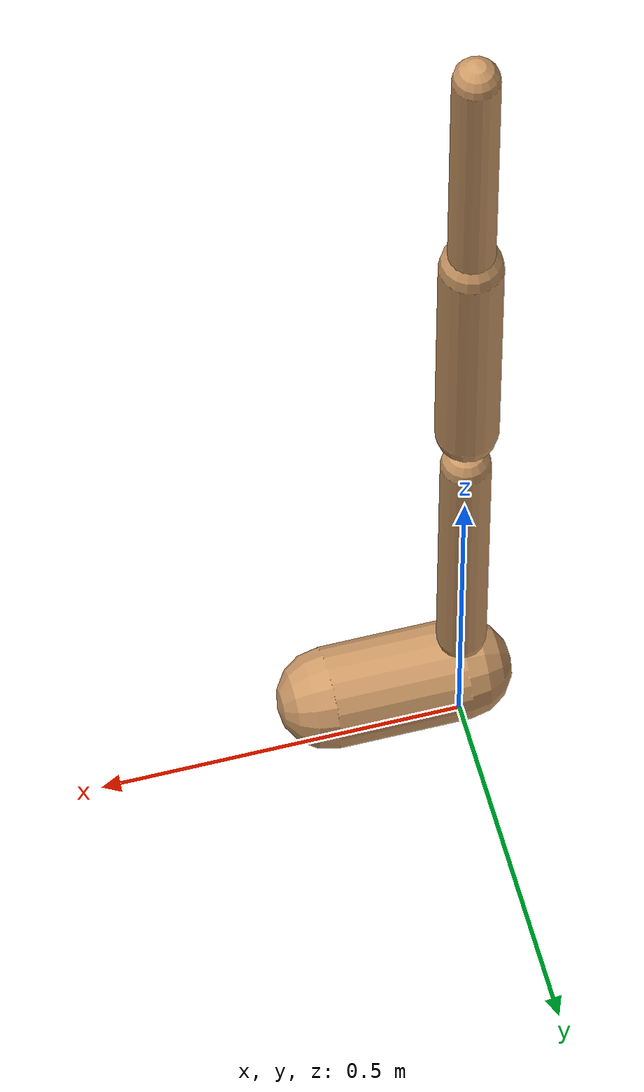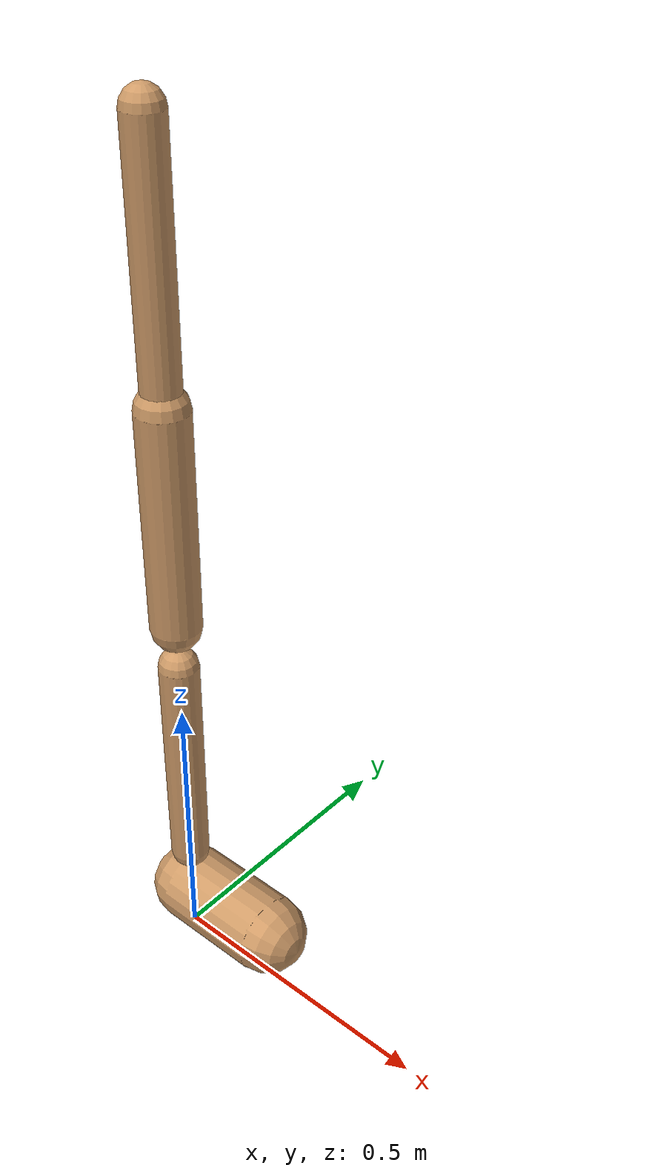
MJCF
<mujoco model="walker2d">
  <compiler angle="degree" coordinate="global" inertiafromgeom="true" />
  <default>
    <joint armature="0.01" damping=".1" limited="true" />
    <geom conaffinity="0" condim="3" contype="1" density="1000" friction="0.8 .1 .1" rgba="0.8 0.6 .4 1" />
  </default>
  <option integrator="RK4" timestep="0.002" />
  <worldbody>

    <body name="torso" pos="0 0 -0.16655631265643703">
      <joint armature="0" axis="1 0 0" damping="0" limited="false" name="ignorex" pos="0 0 0" stiffness="0" type="slide" />
      <joint armature="0" axis="0 0 1" damping="0" limited="false" name="ignorez" pos="0 0 0" ref="1.25" stiffness="0" type="slide" />
      <joint armature="0" axis="0 1 0" damping="0" limited="false" name="ignorey" pos="0 0 0" stiffness="0" type="hinge" />
      <geom fromto="0 0 1.45 0 0 1.05" name="torso_geom" size="0.031024441855523766" type="capsule" />
      <body name="thigh">
        <joint axis="0 -1 0" name="thigh_joint" pos="0 0 1.05" range="-150 0" type="hinge" />
        <geom fromto="0.0 0.0 1.05 0.0 0.0 0.6788950954688385" name="thigh_geom" size="0.04232430457495752" type="capsule" />
        <body name="leg" pos="0.0 0.0 0.07889509546883855">
          <joint axis="0 -1 0" name="leg_joint" pos="0 0 0.6" range="-150 0" type="hinge" />
          <geom fromto="0.0 0.0 0.6 0.0 0.0 0.18766121718759843" name="leg_geom" size="0.033859443659966015" type="capsule" />
          <body name="foot" pos="0.0 0.0 0.08766121718759842">
            <joint axis="0 -1 0" name="foot_joint" pos="0 0 0.1" range="-45 45" type="hinge" />
            <geom fromto="0.0 0.0 0.1 0.1849841044615109 0.0 0.1" name="foot_geom" size="0.070045788006375" type="capsule" />
          </body>
        </body>
      </body>

      <body name="thigh_left">
        <joint axis="0 -1 0" name="thigh_left_joint" pos="0 0 1.05" range="-150 0" type="hinge" />
        <geom fromto="0.0 0.0 1.05 0.0 0.0 0.6788950954688385" name="thigh_left_geom" rgba=".7 .3 .6 1" size="0.04232430457495752" type="capsule" />
        <body name="leg_left" pos="0.0 0.0 0.07889509546883855">
          <joint axis="0 -1 0" name="leg_left_joint" pos="0 0 0.6" range="-150 0" type="hinge" />
          <geom fromto="0.0 0.0 0.6 0.0 0.0 0.18766121718759843" name="leg_left_geom" rgba=".7 .3 .6 1" size="0.033859443659966015" type="capsule" />
          <body name="foot_left" pos="0.0 0.0 0.08766121718759842">
            <joint axis="0 -1 0" name="foot_left_joint" pos="0 0 0.1" range="-45 45" type="hinge" />
            <geom fromto="0.0 0.0 0.1 0.1849841044615109 0.0 0.1" name="foot_left_geom" rgba=".7 .3 .6 1" size="0.070045788006375" type="capsule" />
          </body>
        </body>
      </body>
    </body>
  </worldbody>
  <actuator>

    <motor ctrllimited="true" ctrlrange="-1.0 1.0" gear="100" joint="thigh_joint" />
    <motor ctrllimited="true" ctrlrange="-1.0 1.0" gear="100" joint="leg_joint" />
    <motor ctrllimited="true" ctrlrange="-1.0 1.0" gear="100" joint="foot_joint" />
    <motor ctrllimited="true" ctrlrange="-1.0 1.0" gear="100" joint="thigh_left_joint" />
    <motor ctrllimited="true" ctrlrange="-1.0 1.0" gear="100" joint="leg_left_joint" />
    <motor ctrllimited="true" ctrlrange="-1.0 1.0" gear="100" joint="foot_left_joint" />

  </actuator>
</mujoco>
